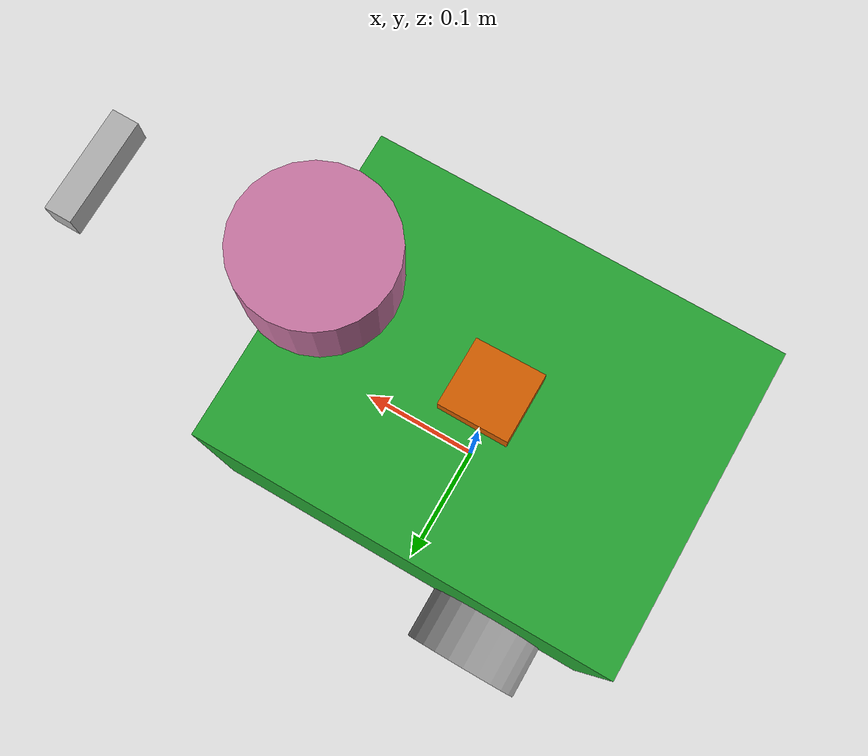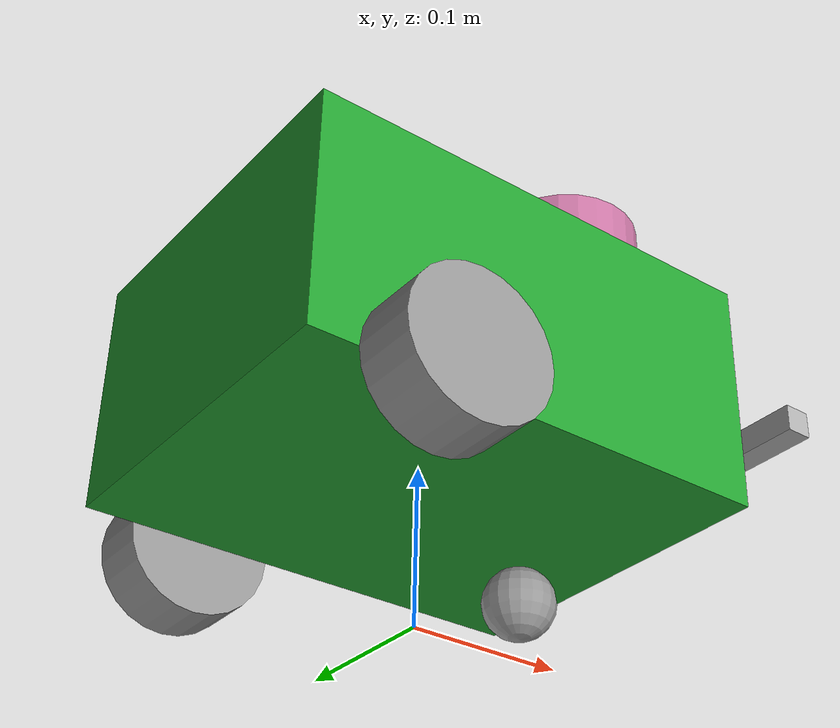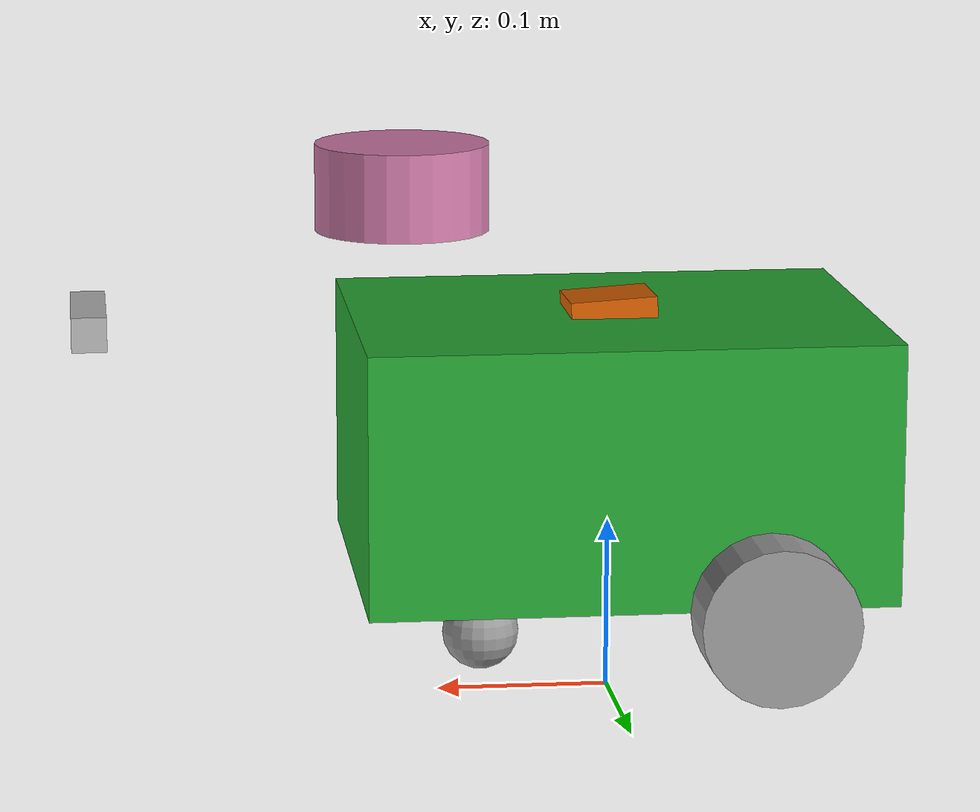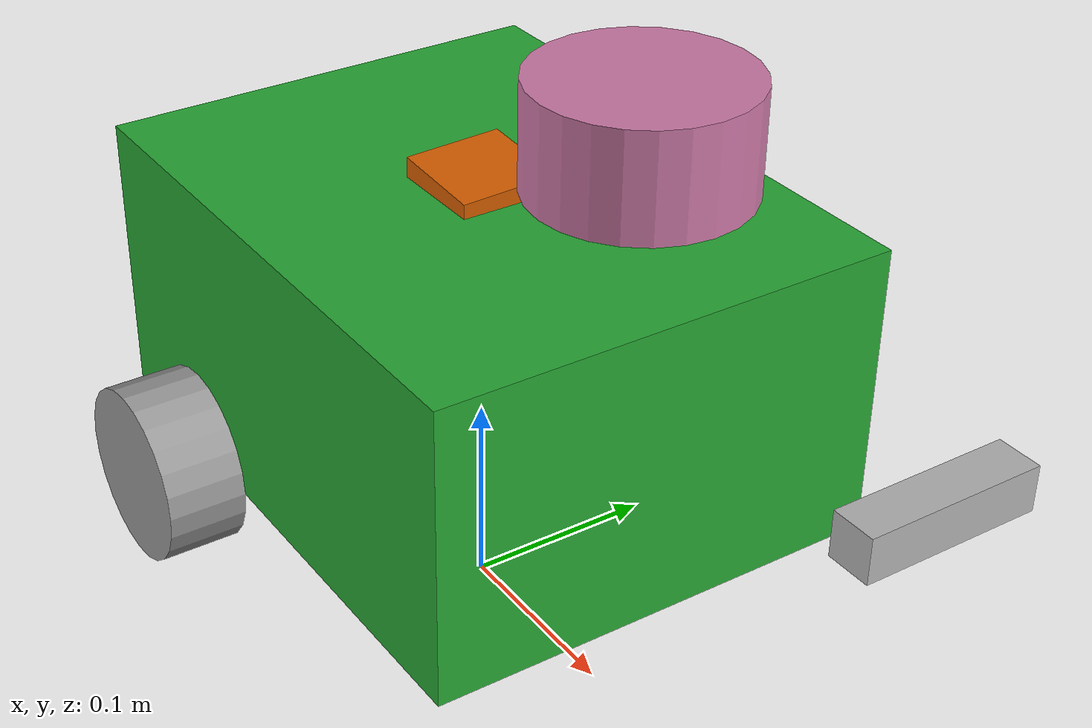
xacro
<?xml version="1.0" encoding="UTF-8"?>
<robot xmlns:xacro="http://www.ros.org/wiki/xacro">
    <!-- xacro properties -->
    <xacro:property name="base_length" value="0.3" />
    <xacro:property name="base_width" value="0.235" />
    <xacro:property name="base_height" value="0.15" />
    <xacro:property name="wheel_radius" value="0.045"/>
    <xacro:property name="wheel_length" value="0.04" />

<!-- xacro macros-->
    <xacro:macro name="wheel_link" params="prefix">
        <link name="${prefix}wheel_link">
            <visual>
                <geometry>
                    <cylinder radius="${wheel_radius}" length="${wheel_length}" />
                </geometry>

                <origin xyz="0 0 0" rpy="${pi / 2.0} 0 0" />

                <material name="grey" />
            </visual>

            <collision>
                <geometry>
                    <cylinder radius="${wheel_radius}" length="${wheel_length}" />
                </geometry>
                <origin xyz="0 0 0" rpy="${pi / 2.0} 0 0" />
            </collision>

            <xacro:cylinder_inertia m="1.0" r="${2*wheel_radius}"
                                    h="${2*wheel_length}" xyz="0 0 0"
                                    rpy="${pi / 2.0} 0 0"/>
        </link>
    </xacro:macro>

<!-- links -->
    <link name="base_footprint" />

    <link name="base_link">
        <visual>
            <geometry>
                <box size="${base_length} ${base_width} ${base_height}" />
            </geometry>

            <origin xyz="0 0 ${base_height / 2.0}" rpy="0 0 0" />

            <material name="green"/>
        </visual>

        <collision>
            <geometry>
                <box size="${base_length} ${base_width} ${base_height}" />
            </geometry>

            <origin xyz="0 0 ${base_height / 2.0}" rpy="0 0 0" />
        </collision>

        <xacro:box_inertia m="5.0" l="${2*base_length}" w="${2*base_width}"
                           h="${2*base_height}" xyz="0 0 ${base_height / 2.0}"
                           rpy="0 0 0"/>
    </link>

    <xacro:wheel_link prefix="right" />
    <xacro:wheel_link prefix="left" />

    <link name="castorwheel_link">
        <visual>
            <geometry>
                <sphere radius="${wheel_radius / 2.0}" />
            </geometry>

            <origin xyz="0 0 0" rpy="0 0 0" />

            <material name="grey" />
        </visual>

        <collision>
            <geometry>
                <sphere radius="${wheel_radius / 2.0}" />
            </geometry>

            <origin xyz="0 0 0" rpy="0 0 0" />
        </collision>

        <xacro:sphere_inertia m="0.5" r="${2*wheel_radius / 2.0}"
                              xyz="0 0 0" rpy="0 0 0"/>
    </link>

<!-- joints -->

    <joint name="base_joint" type="fixed">
        <parent link="base_footprint" />
        <child link="base_link" />
        <origin xyz="0 0 ${base_height / 2.0}" rpy="0 0 0" />
    </joint>

    <joint name="base_rightwheel_joint" type="continuous">
        <parent link="base_link" />
        <child link="rightwheel_link" />
        <origin xyz="${-base_length / 4.0} ${(-base_width / 2.0) - (wheel_length / 2.0)} 0" rpy="0 0 0" />
        <axis xyz="0 1 0" />
        <limit lower="${-pi / 2.0}" upper="${pi / 2.0}" velocity="100" effort="100" />
    </joint>

    <joint name="base_leftwheel_joint" type="continuous">
        <parent link="base_link" />
        <child link="leftwheel_link" />
        <origin xyz="${-base_length / 4.0} ${(base_width / 2.0) + (wheel_length / 2.0)} 0" rpy="0 0 0" />
        <axis xyz="0 1 0" />
        <limit lower="${-pi / 2.0}" upper="${pi / 2.0}" velocity="100" effort="100" />
    </joint>

    <joint name="base_castorwheel_joint" type="fixed">
        <parent link="base_link" />
        <child link="castorwheel_link" />
        <origin xyz="${base_length / 4.0} 0 ${-wheel_length}" rpy="0 0 0" />
    </joint>

    	<!-- ================= IMU LINK ================= -->
	<link name="imu_link">
	<visual>
		<geometry>
		<box size="0.05 0.05 0.02"/>
		</geometry>
	</visual>

	<collision>
		<geometry>
		<box size="0.05 0.05 0.02"/>
		</geometry>
	</collision>

	<inertial>
		<origin xyz="0 0 0" rpy="0 0 0"/>
		<mass value="0.1"/>
		<inertia ixx="0.0001" ixy="0" ixz="0"
				iyy="0.0001" iyz="0"
				izz="0.0001"/>
	</inertial>
	</link>

	<joint name="imu_joint" type="fixed">
		<parent link="base_link"/>
		<child link="imu_link"/>
		<origin xyz="0 0 0.15" rpy="0.03302 0.06168 0"/>
	</joint>

	<!-- ================= LIDAR LINK ================= -->

	<link name="lidar_link">
	<visual>
		<geometry>
		<cylinder radius="0.05" length="0.05"/>
		</geometry>
	</visual>

	<collision>
		<geometry>
		<cylinder radius="0.05" length="0.05"/>
		</geometry>
	</collision>

	<inertial>
		<origin xyz="0 0 0"/>
		<mass value="0.2"/>
		<inertia ixx="0.001" ixy="0" ixz="0"
				iyy="0.001" iyz="0"
				izz="0.001"/>
	</inertial>
	</link>

	<joint name="lidar_joint" type="fixed">
		<parent link="base_link"/>
		<child link="lidar_link"/>
		<origin xyz="0.12 0.0 0.225" rpy="0 0 3.14159"/>
	</joint>

	<!-- ================= CAMERA LINK ================= -->

	<link name="camera_link">
	<visual>
		<geometry>
		<box size="0.02 0.08 0.02"/>
		</geometry>
	</visual>

	<collision>
		<geometry>
		<box size="0.02 0.08 0.02"/>
		</geometry>
	</collision>

	<inertial>
		<origin xyz="0 0 0"/>
		<mass value="0.05"/>
		<inertia ixx="0.0001" ixy="0" ixz="0"
				iyy="0.0001" iyz="0"
				izz="0.0001"/>
	</inertial>
	</link>

	<joint name="camera_joint" type="fixed">
		<parent link="base_link"/>
		<child link="camera_link"/>
		<origin xyz="0.3 0 0.15"/>
	</joint>

	<link name="camera_depth_frame"/>

	<joint name="camera_depth_joint" type="fixed">
		<parent link="camera_link"/>
		<child link="camera_depth_frame"/>
		<origin xyz="0 0 0" rpy="-1.57 0 -1.57"/>
	</joint>

</robot>
